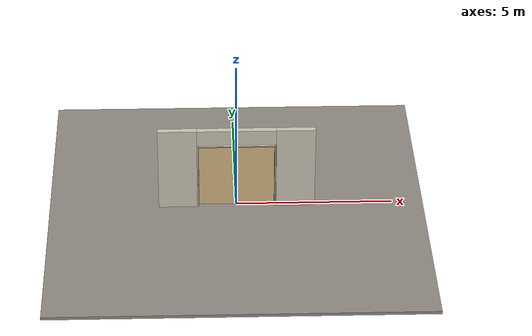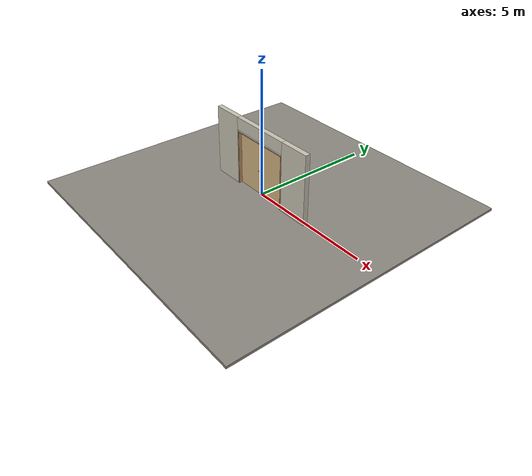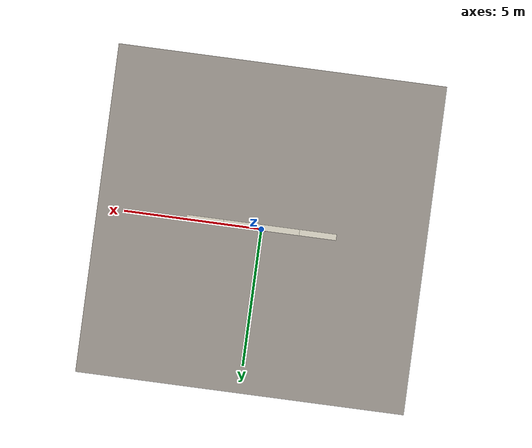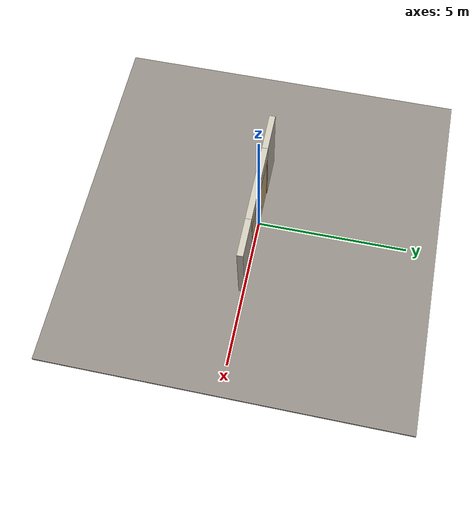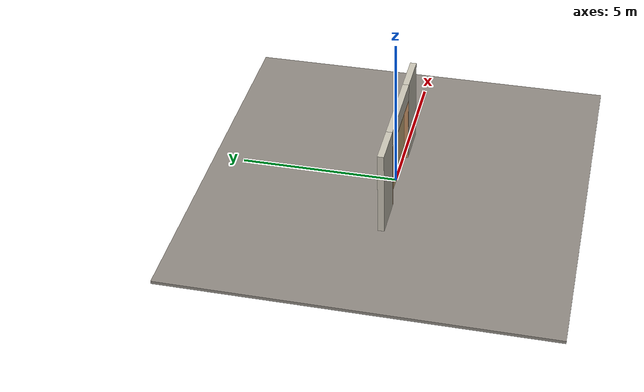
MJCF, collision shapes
<?xml version="1.0" ?>
<mujoco model="db0918_swing_double_minimal">
  <compiler angle="radian" meshdir="../../hardware" texturedir="../../textures" autolimits="true" inertiafromgeom="false"/>
  <option timestep="0.002" integrator="implicitfast" cone="elliptic" impratio="10" noslip_iterations="3">
    <flag multiccd="enable"/>
  </option>
  <size memory="16M"/>
  <default>
    <geom condim="4" solref="0.005 1" solimp="0.95 0.99 0.001"/>
    <joint solreflimit="0.005 1" solimplimit="0.95 0.99 0.001"/>
    <tendon solreflimit="0.005 1"/>
    <equality solref="0.002 1"/>
  </default>
  <visual>
    <headlight ambient="0.4 0.4 0.4" diffuse="0.7 0.7 0.7" specular="0.2 0.2 0.2"/>
    <quality shadowsize="4096"/>
    <map znear="0.01" zfar="60"/>
  </visual>
  <asset>
    <mesh name="ring_cc5c941a8a" file="ring_cc5c941a8a.obj"/>
    <material name="mat_floor" rgba="0.55 0.53 0.5 1" specular="0.2" shininess="0.15" reflectance="0"/>
    <material name="mat_wall" rgba="0.78 0.76 0.7 1" specular="0.2" shininess="0.1" reflectance="0"/>
    <material name="mat_leaf_a" rgba="0.82 0.7 0.5 1" specular="0.2" shininess="0.45" reflectance="0"/>
    <material name="mat_leaf_a_brace" rgba="0.738 0.63 0.45 1" specular="0.2" shininess="0.2" reflectance="0"/>
    <material name="mat_hinge" rgba="0.65 0.66 0.68 1" specular="0.74" shininess="0.5" reflectance="0.36"/>
    <material name="mat_op_wrought_iron" rgba="0.08 0.08 0.09 1" specular="0.56" shininess="0.25" reflectance="0.24"/>
    <material name="mat_leaf_b" rgba="0.82 0.7 0.5 1" specular="0.2" shininess="0.45" reflectance="0"/>
    <material name="mat_leaf_b_brace" rgba="0.738 0.63 0.45 1" specular="0.2" shininess="0.2" reflectance="0"/>
    <material name="mat_frame" rgba="0.75 0.55 0.38 1" specular="0.2" shininess="0.45" reflectance="0"/>
    <texture name="skybox" type="skybox" builtin="gradient" rgb1="0.6 0.7 0.85" rgb2="0.9 0.92 0.95" width="256" height="256"/>
  </asset>
  <worldbody>
    <light name="sun" pos="1.5 -2.5 4" dir="-0.3 0.5 -0.8" directional="true" diffuse="0.8 0.8 0.8" specular="0.3 0.3 0.3" castshadow="true"/>
    <light name="fill" pos="-1.5 2.5 3" dir="0.3 -0.5 -0.7" directional="true" diffuse="0.35 0.35 0.4" castshadow="false"/>
    <camera name="robot_view" pos="0 -2.941438 1.913863" xyaxes="1 0 0 0 0.26963 0.962964" fovy="52"/>
    <camera name="far_view" pos="0 2.825438 1.913863" xyaxes="-1 0 0 0 -0.26963 0.962964" fovy="52"/>
    <camera name="iso" pos="-2.191412 -2.480088 2.375212" xyaxes="0.741536 -0.670913 0 0.242917 0.268487 0.932151" fovy="46"/>
    <camera name="detail_handle" pos="0.0735 -0.854 1.27" xyaxes="0.97561 0.219512 0 -0.070934 0.315262 0.94635" fovy="38"/>
    <geom name="floor" type="box" size="6 6 0.05" pos="0 0 -0.05" material="mat_floor" group="0" contype="1" conaffinity="1" friction="0.8 0.005 0.0001" density="2400"/>
    <geom name="wall_left" type="box" size="0.61775 0.1 1.4065" pos="-1.88225 -0.058 1.4065" material="mat_wall" group="0" contype="1" conaffinity="1" friction="0.6 0.005 0.0001" density="800"/>
    <geom name="wall_right" type="box" size="0.61775 0.1 1.4065" pos="1.88225 -0.058 1.4065" material="mat_wall" group="0" contype="1" conaffinity="1" friction="0.6 0.005 0.0001" density="800"/>
    <geom name="wall_header" type="box" size="1.2645 0.1 0.255" pos="0 -0.058 2.558" material="mat_wall" group="0" contype="1" conaffinity="1" friction="0.6 0.005 0.0001" density="800"/>
    <geom name="jamb_l" type="box" size="0.0095 0.1 1.1065" pos="-1.214 -0.058 1.1065" material="mat_frame" group="0" contype="1" conaffinity="1" friction="0.6 0.005 0.0001" density="300"/>
    <geom name="jamb_r" type="box" size="0.0095 0.1 1.1065" pos="1.214 -0.058 1.1065" material="mat_frame" group="0" contype="1" conaffinity="1" friction="0.6 0.005 0.0001" density="300"/>
    <geom name="jamb_head" type="box" size="1.2235 0.1 0.0095" pos="0 -0.058 2.2225" material="mat_frame" group="0" contype="1" conaffinity="1" friction="0.6 0.005 0.0001" density="300"/>
    <geom name="head_stud" type="box" size="1.2235 0.1 0.015" pos="0 -0.058 2.247" material="mat_wall" group="0" contype="1" conaffinity="1" friction="0.6 0.005 0.0001" density="500"/>
    <site name="approach_point" pos="0 -1.5 0" quat="1 0 0 0" size="0.05" rgba="0.2 0.9 0.2 0.5" group="4"/>
    <site name="goal_point" pos="0 1.5 0" quat="1 0 0 0" size="0.05" rgba="0.2 0.9 0.2 0.5" group="4"/>
    <site name="door_plane_center" pos="0 0 1.1065" quat="1 0 0 0" size="0.02" rgba="0.2 0.9 0.2 0.5" group="4"/>
    <site name="approach_point_2" pos="0 -1.5 0" quat="1 0 0 0" size="0.05" rgba="0.2 0.9 0.2 0.5" group="4"/>
    <site name="goal_point_2" pos="0 1.5 0" quat="1 0 0 0" size="0.05" rgba="0.2 0.9 0.2 0.5" group="4"/>
    <site name="door_plane_center_2" pos="0 0 1.1065" quat="1 0 0 0" size="0.02" rgba="0.2 0.9 0.2 0.5" group="4"/>
    <site name="approach_point_3" pos="0 -1.5 0" quat="1 0 0 0" size="0.05" rgba="0.2 0.9 0.2 0.5" group="4"/>
    <site name="goal_point_3" pos="0 1.5 0" quat="1 0 0 0" size="0.05" rgba="0.2 0.9 0.2 0.5" group="4"/>
    <site name="door_plane_center_3" pos="0 0 1.1065" quat="1 0 0 0" size="0.02" rgba="0.2 0.9 0.2 0.5" group="4"/>
    <body name="leaf_a" pos="-1.2045 0 0">
      <inertial pos="0.610217 0 1.10797" mass="47.355459" quat="0.500468 0.500442 0.499532 -0.499557" diaginertia="5.776939595 18.836131678 24.593729033"/>
      <joint name="leaf_a_hinge" type="hinge" axis="0 0 1" pos="0.003 0.029 0" limited="true" range="0 1.396263" damping="0.873883" frictionloss="15.165791" armature="0.02"/>
      <geom name="leaf_a_slab" type="box" size="0.6 0.022 1.1" pos="0.603 0 1.109" material="mat_leaf_a" group="0" contype="1" conaffinity="1" friction="0.35 0.005 0.0001" density="1"/>
      <geom name="leaf_a_ring_pull_n" type="mesh" mesh="ring_cc5c941a8a" pos="1.098 -0.022 1.05" quat="0.707107 0.707107 0 0" material="mat_op_wrought_iron" group="1" contype="0" conaffinity="0" density="3000"/>
      <geom name="leaf_a_ring_pull_col_n" type="capsule" size="0.008 0.05" pos="1.098 -0.054 0.99" quat="0.707107 0 0.707107 0" material="mat_op_wrought_iron" group="3" contype="1" conaffinity="1" rgba="0.8 0.3 0.3 0.25" friction="0.7 0.01 0.0001" density="3000"/>
      <geom name="leaf_a_ring_pull_p" type="mesh" mesh="ring_cc5c941a8a" pos="1.098 0.022 1.05" quat="-0.707107 0.707107 0 0" material="mat_op_wrought_iron" group="1" contype="0" conaffinity="0" density="3000"/>
      <geom name="leaf_a_ring_pull_col_p" type="capsule" size="0.008 0.05" pos="1.098 0.054 0.99" quat="0.707107 0 0.707107 0" material="mat_op_wrought_iron" group="3" contype="1" conaffinity="1" rgba="0.8 0.3 0.3 0.25" friction="0.7 0.01 0.0001" density="3000"/>
      <site name="leaf_a_ring_pull_grip_n" pos="1.098 -0.054 0.99" quat="1 0 0 0" size="0.012" rgba="0.2 0.9 0.2 0.5" group="4"/>
      <site name="leaf_a_ring_pull_grip_p" pos="1.098 0.054 0.99" quat="1 0 0 0" size="0.012" rgba="0.2 0.9 0.2 0.5" group="4"/>
      <site name="leaf_a_edge_mid" pos="1.203 0 1.1" quat="1 0 0 0" size="0.02" rgba="0.2 0.9 0.2 0.5" group="4"/>
    </body>
    <body name="leaf_b" pos="1.2045 0 0">
      <inertial pos="-0.603 0 1.109" mass="47.272541" quat="-0.5 0.5 0.5 0.5" diaginertia="5.680331509 19.074218014 24.73929625"/>
      <joint name="leaf_b_hinge" type="hinge" axis="0 0 -1" pos="-0.003 0.029 0" limited="true" range="0 0.001" damping="0.873883" frictionloss="15.165791" armature="0.02"/>
      <geom name="leaf_b_slab" type="box" size="0.6 0.022 1.1" pos="-0.603 0 1.109" material="mat_leaf_b" group="0" contype="1" conaffinity="1" friction="0.35 0.005 0.0001" density="1"/>
      <site name="leaf_b_edge_mid" pos="-1.203 0 1.1" quat="1 0 0 0" size="0.02" rgba="0.2 0.9 0.2 0.5" group="4"/>
    </body>
  </worldbody>
  <sensor>
    <jointpos name="leaf_a_hinge_pos" joint="leaf_a_hinge"/>
    <jointvel name="leaf_a_hinge_vel" joint="leaf_a_hinge"/>
    <jointpos name="leaf_b_hinge_pos" joint="leaf_b_hinge"/>
    <jointvel name="leaf_b_hinge_vel" joint="leaf_b_hinge"/>
  </sensor>
</mujoco>
